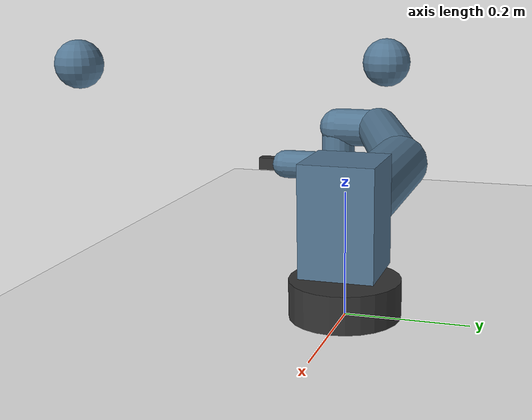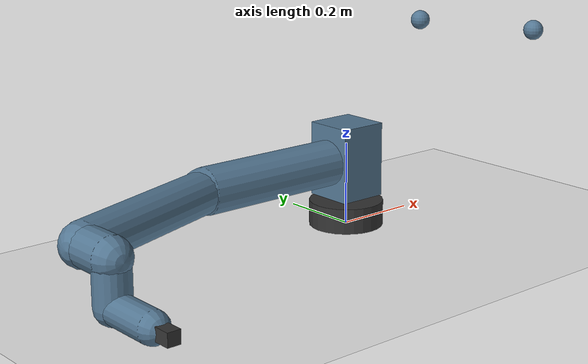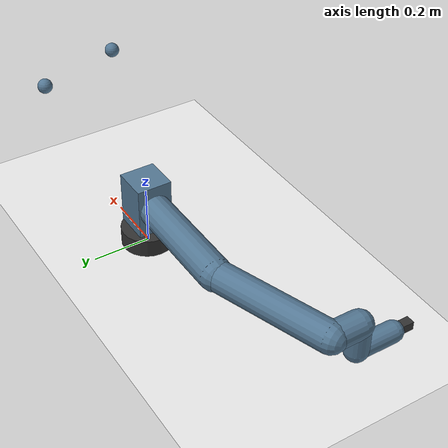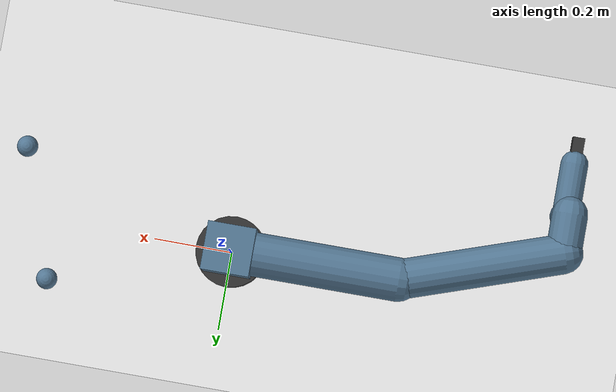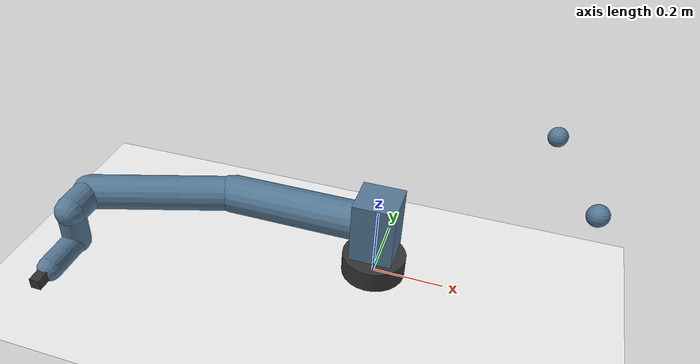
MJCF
<mujoco model="ur5e_lab2_scene">
  <!--
    UR5e Lab Scene: Robot with target objects.
    Uses the validated MuJoCo Menagerie UR5e model.
    Note: do NOT set meshdir here — let ur5e.xml resolve its own meshdir.
  -->
  <include file="mujoco_menagerie/universal_robots_ur5e/ur5e.xml"/>

  <statistic center="0.3 0 0.5" extent="1.2"/>

  <visual>
    <headlight diffuse="0.6 0.6 0.6" ambient="0.3 0.3 0.3" specular="0 0 0"/>
    <rgba haze="0.15 0.25 0.35 1"/>
    <global azimuth="150" elevation="-25"/>
  </visual>

  <asset>
    <texture type="skybox" builtin="gradient" rgb1="0.3 0.5 0.7" rgb2="0 0 0"
      width="512" height="3072"/>
    <texture type="2d" name="groundplane" builtin="checker" mark="edge"
      rgb1="0.2 0.3 0.4" rgb2="0.1 0.2 0.3" markrgb="0.8 0.8 0.8"
      width="300" height="300"/>
    <material name="groundplane" texture="groundplane" texuniform="true"
      texrepeat="5 5" reflectance="0.2"/>
    <material name="target_red" rgba="0.85 0.18 0.18 1"/>
    <material name="target_green" rgba="0.18 0.85 0.18 1"/>
  </asset>

  <worldbody>
    <light pos="0 0 2.5" dir="0 0 -1" directional="true"/>
    <light pos="1.5 -1.5 2.0" dir="-0.5 0.5 -1" directional="false"/>
    <geom name="floor" size="0 0 0.05" type="plane" material="groundplane"/>

    <!-- Target sphere (red) -->
    <body name="target_red" pos="0.4 0.15 0.44">
      <geom type="sphere" size="0.025" material="target_red" contype="0" conaffinity="0"/>
    </body>

    <!-- Target sphere (green) -->
    <body name="target_green" pos="0.5 -0.15 0.44">
      <geom type="sphere" size="0.025" material="target_green" contype="0" conaffinity="0"/>
    </body>
  </worldbody>
</mujoco>

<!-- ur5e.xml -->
<mujoco model="ur5e_lab2_robot">
  <compiler angle="radian" autolimits="true"/>
  <option timestep="0.002" gravity="0 0 -9.81" integrator="RK4"/>

  <default>
    <joint damping="1.0" armature="0.01" limited="true"/>
    <geom rgba="0.33 0.47 0.58 1" density="800"/>
    <motor ctrllimited="true" ctrlrange="-180 180"/>
  </default>

  <worldbody>
    <geom type="plane" size="2 2 0.1" rgba="0.92 0.92 0.92 1"/>
    <body name="base" pos="0 0 0">
      <geom type="cylinder" size="0.09 0.06" rgba="0.20 0.20 0.20 1"/>
      <body name="shoulder" pos="0 0 0.1625" euler="0 0 0">
        <joint name="shoulder_pan_joint" axis="0 0 1" range="-6.28318530718 6.28318530718"/>
        <geom type="box" size="0.06 0.06 0.09"/>
        <body name="upper_arm" pos="0 0 0" euler="1.57079632679 0 0">
          <joint name="shoulder_lift_joint" axis="0 0 1" range="-6.28318530718 6.28318530718"/>
          <geom type="capsule" fromto="0 0 0 -0.425 0 0" size="0.055"/>
          <body name="forearm" pos="-0.425 0 0" euler="0 0 0">
            <joint name="elbow_joint" axis="0 0 1" range="-6.28318530718 6.28318530718"/>
            <geom type="capsule" fromto="0 0 0 -0.3922 0 0.1333" size="0.05"/>
            <body name="wrist_1" pos="-0.3922 0 0.1333" euler="0 0 0">
              <joint name="wrist_1_joint" axis="0 0 1" range="-6.28318530718 6.28318530718"/>
              <geom type="capsule" fromto="0 0 0 0 0 0.0997" size="0.045"/>
              <body name="wrist_2" pos="0 0 0.0997" euler="1.57079632679 0 0">
                <joint name="wrist_2_joint" axis="0 0 1" range="-6.28318530718 6.28318530718"/>
                <geom type="capsule" fromto="0 0 0 0 0 0.0996" size="0.04"/>
                <body name="wrist_3" pos="0 0 0.0996" euler="-1.57079632679 0 0">
                  <joint name="wrist_3_joint" axis="0 0 1" range="-6.28318530718 6.28318530718"/>
                  <geom type="capsule" fromto="0 0 0 0 0 0.135" size="0.035"/>
                  <body name="tool0" pos="0 0 0.135">
                    <geom type="box" size="0.015 0.015 0.0675" rgba="0.20 0.20 0.20 1"/>
                    <site name="tool_site" pos="0 0 0" size="0.012" rgba="1 0.2 0.2 1"/>
                  </body>
                </body>
              </body>
            </body>
          </body>
        </body>
      </body>
    </body>
  </worldbody>

  <actuator>
    <motor name="motor1" joint="shoulder_pan_joint"/>
    <motor name="motor2" joint="shoulder_lift_joint"/>
    <motor name="motor3" joint="elbow_joint"/>
    <motor name="motor4" joint="wrist_1_joint"/>
    <motor name="motor5" joint="wrist_2_joint"/>
    <motor name="motor6" joint="wrist_3_joint"/>
  </actuator>
</mujoco>
